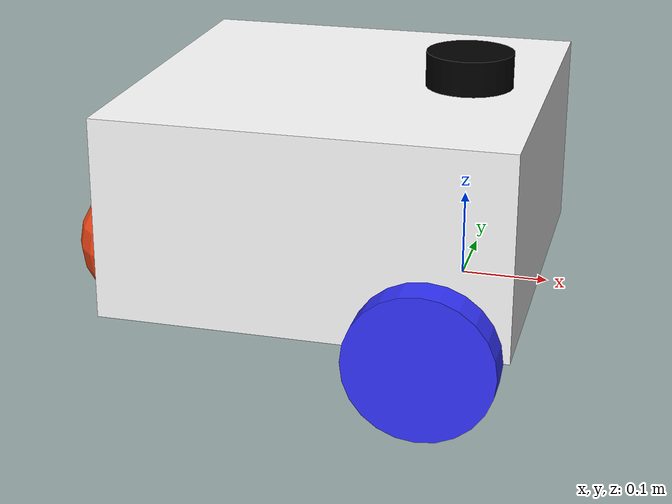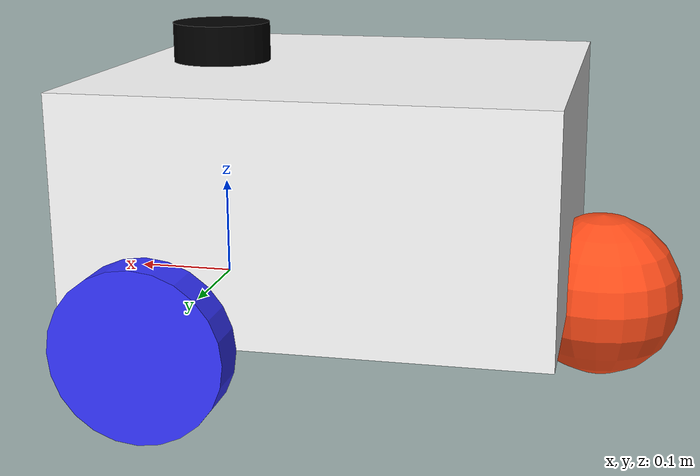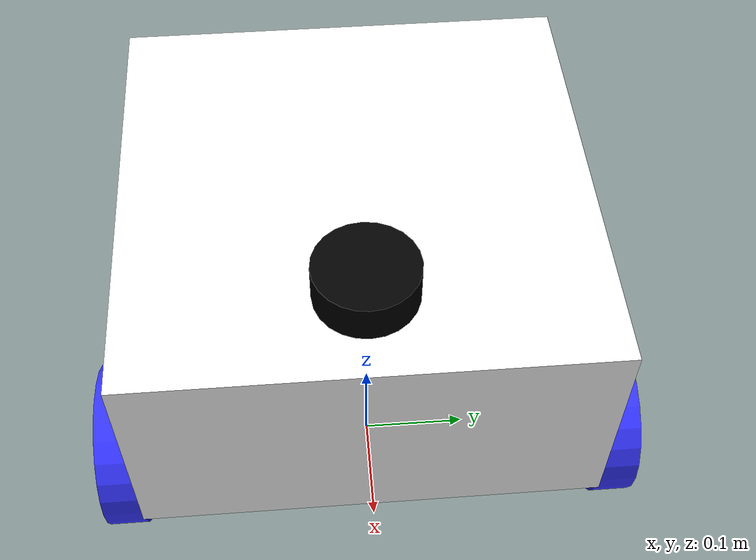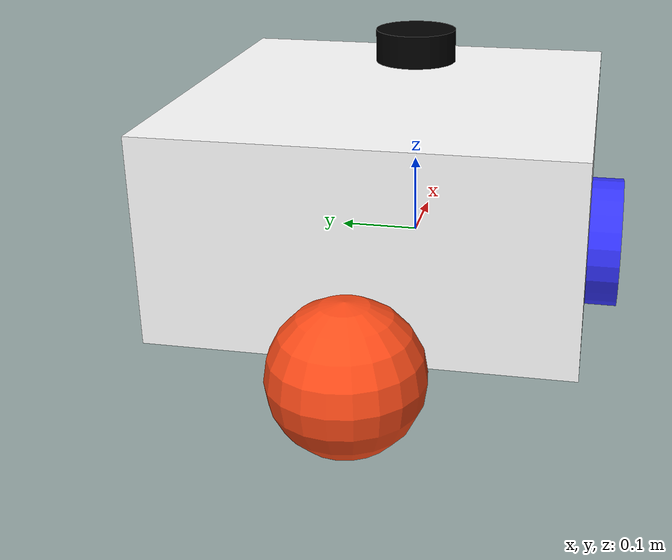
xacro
<?xml version="1.0"?>
<robot xmlns:xacro="http://www.ros.org/wiki/xacro"  name="robot">

    <xacro:arg name="prefix" default="" />
    <xacro:arg name="use_mock_hardware" default="false" />

    <!-- include file that contains robot core description -->
    <xacro:include filename="robot_core.xacro" />

    <xacro:include filename="lidar.xacro" />

    <xacro:include filename="Odrive_ros2_control.xacro" />

    <xacro:diffbot_ros2_control
      name="DiffBot" prefix="$(arg prefix)" use_mock_hardware="$(arg use_mock_hardware)"/>

</robot>

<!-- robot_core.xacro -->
<robot xmlns:xacro="http://www.ros.org/wiki/xacro"  name="robot">

    <!-- include file that contains material tags -->
    <xacro:include filename="robot_colors.xacro" />

    <!-- include file that contains inertial macros -->
    <xacro:include filename="inertial_macros.xacro" />

    <!-- BASE LINK  -->
    <link name="base_link">

    </link>

    <!-- BASE_FOOTPRINT LINK -->

    <joint name="base_footprint_joint" type="fixed">
        <parent link="base_link"/>
        <child link="base_footprint"/>
        <origin xyz="0 0 0" rpy="0 0 0"/>
    </joint>

    <link name="base_footprint">
    </link>

    <!-- CHASSIS LINK -->
    <joint name="chassis_joint" type="fixed">
        <parent link="base_link"/>
        <child link="chassis"/>
        <origin xyz="-0.1 0.0 0.0" rpy="0.0 0.0 0.0"/>
    </joint>

    <link name="chassis">
        <visual>
            <origin xyz="-0.04 0.0 0.115" rpy="0.0 0.0 0.0"/>
            <geometry>
                <box size="0.46 0.46 0.23"/>
            </geometry>
            <material name="white"/>
        </visual>

        <collision>
            <origin xyz="-0.04 0.0 0.115" rpy="0.0 0.0 0.0"/>
            <geometry>
                <box size="0.46 0.46 0.23"/>
            </geometry>
        </collision>

        <xacro:inertial_box mass="10.319" x="0.46" y="0.46" z="0.3">
            <origin xyz="-0.14743 -0.00064615 0.027414" rpy="0.0 0.0 0.0"/>
        </xacro:inertial_box>
    </link>

    <gazebo reference="chassis">
        <material>Gazebo/White</material>
    </gazebo>

    <!-- LEFT WHEEL LINK -->
    <joint name="left_wheel_joint" type="continuous">
        <parent link="base_link"/>
        <child link="left_wheel"/>
        <origin xyz="0 0.25 0" rpy="${pi/2} 0 0"/>
        <axis xyz="0.0 0.0 1.0"/>
    </joint>

    <link name="left_wheel">
    <visual>
        <geometry>
            <cylinder radius="0.083" length="0.04"/>
        </geometry>
        <material name="blue"/>
    </visual>

    <collision>
        <origin xyz="0.0 0.0 0.0" rpy="0.0 0.0 0.0"/>
        <geometry>
            <sphere radius="0.083"/>
        </geometry>
    </collision>

    <xacro:inertial_cylinder mass="0.454027315" length="0.4" radius="0.083">
    <origin xyz="0.0 0.0 0.0" rpy="0.0 0.0 0.0"/>
    </xacro:inertial_cylinder>
    </link>

    <gazebo reference="left_wheel">
        <material>Gazebo/Blue</material>
    </gazebo>

    <!-- RIGHT WHEEL LINK -->
    <joint name="right_wheel_joint" type="continuous">
        <parent link="base_link"/>
        <child link="right_wheel"/>
        <origin xyz="0 -0.25 0" rpy="${pi/2} 0 0"/>
        <axis xyz="0.0 0.0 -1.0"/>
    </joint>

    <link name="right_wheel">
    <visual>
        <geometry>
            <cylinder radius="0.083" length="0.04"/>
        </geometry>
        <material name="blue"/>
    </visual>

    <collision>
        <geometry>
            <sphere radius="0.083"/>
        </geometry>
    </collision>

    <xacro:inertial_cylinder mass="0.454027315" length="0.4" radius="0.083">
    <origin xyz="0.0 0.0 0.0" rpy="0.0 0.0 0.0"/>
    </xacro:inertial_cylinder>
    </link>

    <gazebo reference="right_wheel">
        <material>Gazebo/Blue</material>
    </gazebo>

    <!-- CASTER WHEEL -->
    <joint name="caster_wheel_joint" type="fixed">
        <parent link="chassis"/>
        <child link="caster_wheel"/>
        <origin xyz="-.3 0.0 0.0" rpy="0.0 0.0 0.0"/>
    </joint>

    <link name="caster_wheel">
        <visual>
            <geometry>
                <sphere radius="0.083"/>
            </geometry>
            <material name="orange" />
        </visual>

        <collision>
            <geometry>
                <sphere radius="0.083"/>
            </geometry>
        </collision>

        <xacro:inertial_sphere mass="0.3" radius="0.083">
        <origin xyz="0.0 0.0 0.0" rpy="0.0 0.0 0.0"/>
        </xacro:inertial_sphere>
    </link>

    <gazebo reference="caster_wheel">
        <material>Gazebo/Orange</material>
        <mu1 value="0.001"/>
        <mu2 value="0.001"/>
    </gazebo>

</robot>

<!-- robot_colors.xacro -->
<robot xmlns:xacro="http://www.ros.org/wiki/xacro"  name="robot">

<material name= "white">
    <color rgba ="1 1 1 1" />
</material>

<material name= "orange">
    <color rgba ="1 0.3 0.1 1" />
</material>

<material name= "blue">
    <color rgba ="0.2 0.2 1 1" />
</material>

<material name= "black">
    <color rgba ="0 0 0 1" />
</material>

<material name= "red">
    <color rgba ="1 0 0 1" />
</material>

</robot>

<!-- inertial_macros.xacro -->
<robot xmlns:xacro="http://www.ros.org/wiki/xacro" >

    <!-- Specify some standard inertial calculations https://en.wikipedia.org/wiki/List_of_moments_of_inertia -->
    <!-- These make use of xacro's mathematical functionality -->

    <xacro:macro name="inertial_sphere" params="mass radius *origin">
        <inertial>
            <xacro:insert_block name="origin"/>
            <mass value="${mass}" />
            <inertia ixx="${(2/5) * mass * (radius*radius)}" ixy="0.0" ixz="0.0"
                    iyy="${(2/5) * mass * (radius*radius)}" iyz="0.0"
                    izz="${(2/5) * mass * (radius*radius)}" />
        </inertial>
    </xacro:macro>

    <xacro:macro name="inertial_box" params="mass x y z *origin">
        <inertial>
            <xacro:insert_block name="origin"/>
            <mass value="${mass}" />
            <inertia
             ixx="0.14128"
             ixy="-1.02E-07"
             ixz="-0.0013572"
             iyy="0.14302"
             iyz="6.92E-08"
             izz="0.27183"  />
        </inertial>
    </xacro:macro>

    <xacro:macro name="inertial_cylinder" params="mass length radius *origin">
        <inertial>
            <xacro:insert_block name="origin"/>
            <mass value="${mass}" />
            <inertia
             ixx="0.00120506"
             ixy="6.67E-09"
             ixz="-2.51E-10"
             iyy="0.001205041"
             iyz="-7.22E-10"
             izz="0.002290365" />
        </inertial>
    </xacro:macro>

</robot>

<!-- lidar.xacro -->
<robot xmlns:xacro="http://www.ros.org/wiki/xacro"  name="robot">

    <joint name="laser_joint" type="fixed">
        <origin xyz="0.1 0.0 0.25" rpy="0.0 0.0 0.0"/>
        <parent link="chassis"/>
        <child link="laser_frame"/>
    </joint>

    <link name="laser_frame">
    <visual>
        <geometry>
            <cylinder radius="0.05" length="0.04"/>
        </geometry>
        <material name="black"/>
    </visual>

    <collision>
        <geometry>
            <cylinder radius="0.05" length="0.04"/>
        </geometry>
    </collision>

    <xacro:inertial_cylinder mass="0.1" length="0.4" radius="0.05">
    <origin xyz="0.0 0.0 0.0" rpy="0.0 0.0 0.0"/>
    </xacro:inertial_cylinder>
    </link>

<gazebo reference="laser_frame">
        <material>Gazebo/Black</material>

        <sensor name="laser" type="ray">
            <pose> 0 0 0 0 0 0 </pose>
            <visualize>true</visualize>
            <update_rate>10</update_rate>
            <ray>
                <scan>
                    <horizontal>
                        <samples>360</samples>
                        <min_angle>-3.14</min_angle>
                        <max_angle>3.14</max_angle>
                    </horizontal>
                </scan>
                <range>
                    <min>0.3</min>
                    <max>12</max>
                </range>
            </ray>
            <plugin name="laser_controller" filename="libgazebo_ros_ray_sensor.so">
                <ros>
                    <argument>~/out:=scan</argument>
                </ros>
                <output_type>sensor_msgs/LaserScan</output_type>
                <frame_name>laser_frame</frame_name>
            </plugin>
        </sensor>
    </gazebo>

</robot>
